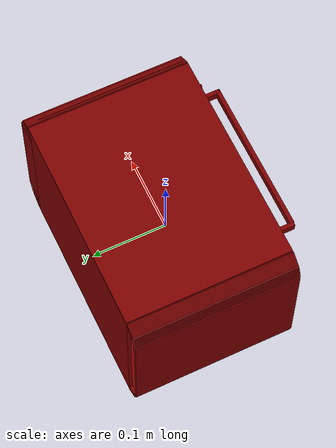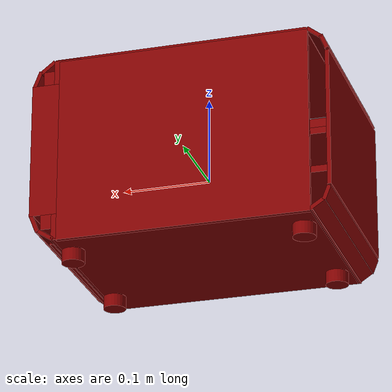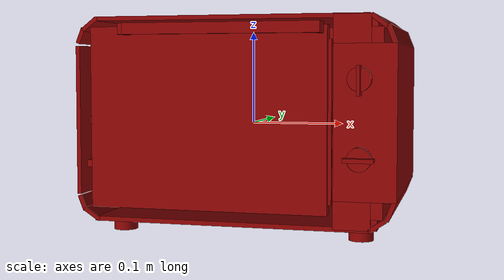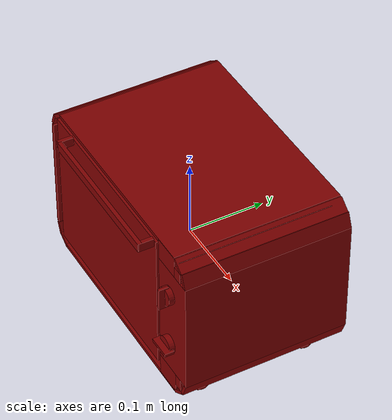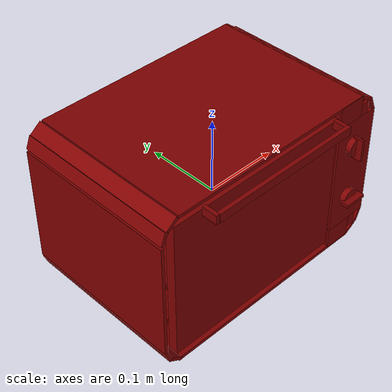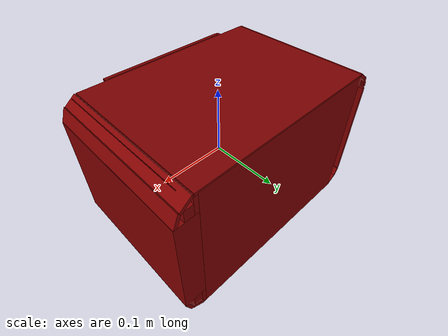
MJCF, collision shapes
<?xml version='1.0' encoding='UTF-8'?>
<mujoco model="model">
  <option timestep="0.002" gravity="0.0 0.0 -9.81"/>
  <compiler angle="radian"/>
  <asset>
    <mesh file="visuals/Body001.obj" name="Body001_vis"/>
    <mesh file="visuals/Door001.obj" name="Door001_vis"/>
    <mesh file="visuals/Door001_Clear.obj" name="Door001_Clear_vis"/>
    <mesh file="visuals/Knob001.obj" name="Knob001_vis"/>
    <mesh file="visuals/Knob002.obj" name="Knob002_vis"/>
    <mesh file="visuals/Shelf001.obj" name="Shelf001_vis"/>
    <mesh file="visuals/Shelf002.obj" name="Shelf002_vis"/>
    <texture file="visuals/T_BC001.png" name="Body001_material" type="2d"/>
    <material name="Body001_material" rgba="1 1 1 1.0" texture="Body001_material" shininess="0.5" specular="1"/>
    <texture file="visuals/T_BC001.png" name="Door001_material" type="2d"/>
    <material name="Door001_material" rgba="1 1 1 1.0" texture="Door001_material" shininess="0.4472135901451111" specular="1"/>
    <texture file="visuals/T_BC001.png" name="Door001_Clear_material" type="2d"/>
    <material name="Door001_Clear_material" rgba="1 1 1 0.7325905561447144" texture="Door001_Clear_material" shininess="0.4472135901451111" specular="0.3103448502657381"/>
    <texture file="visuals/T_BC001.png" name="Knob001_material" type="2d"/>
    <material name="Knob001_material" rgba="1 1 1 1.0" texture="Knob001_material" shininess="0.4472135901451111" specular="0.3103448502657381"/>
    <texture file="visuals/T_BC001.png" name="Knob002_material" type="2d"/>
    <material name="Knob002_material" rgba="1 1 1 1.0" texture="Knob002_material" shininess="0.4472135901451111" specular="0.3103448502657381"/>
    <texture file="visuals/T_BC001.png" name="Shelf001_material" type="2d"/>
    <material name="Shelf001_material" rgba="1 1 1 1.0" texture="Shelf001_material" shininess="0.4472135901451111" specular="0.3103448502657381"/>
    <texture file="visuals/T_BC001.png" name="Shelf002_material" type="2d"/>
    <material name="Shelf002_material" rgba="1 1 1 1.0" texture="Shelf002_material" shininess="0.4472135901451111" specular="0.3103448502657381"/>
  </asset>
  <default>
    <default class="visual">
      <geom conaffinity="0" contype="0" group="1" type="mesh"/>
    </default>
    <default class="collision">
      <geom group="0" rgba="0.5 0 0 0.5"/>
    </default>
    <default class="spawn">
      <geom group="0" rgba="1 1 1 0.5" contype="0" conaffinity="0"/>
      <site group="0" rgba="1 1 1 0.5"/>
    </default>
    <default class="region">
      <geom group="1" conaffinity="0" contype="0" rgba="0 1 0 0"/>
    </default>
  </default>
  <worldbody>
    <body>
      <body name="object">
        <geom mesh="Body001_vis" type="mesh" solimp="0.998 0.998 0.001" solref="0.001 1" friction="0.95 0.3 0.1" class="visual" material="Body001_material"/>
        <geom class="collision" type="cylinder" pos="-0.129260 -0.059913 -0.106618" size="0.012784481048583984 0.008236567489802837" quat="1.0 0.0 0.0 0.0" density="1000.0"/>
        <geom class="collision" type="cylinder" pos="0.129404 -0.060236 -0.106618" size="0.012784481048583984 0.008236567489802837" quat="1.0 0.0 0.0 0.0" density="1000.0"/>
        <geom class="collision" type="cylinder" pos="-0.129220 0.082953 -0.106618" size="0.012784481048583984 0.008236567489802837" quat="1.0 0.0 0.0 0.0" density="1000.0"/>
        <geom class="collision" type="cylinder" pos="0.129404 0.082385 -0.106618" size="0.012784481048583984 0.008236567489802837" quat="1.0 0.0 0.0 0.0" density="1000.0"/>
        <geom class="collision" type="box" pos="-0.003658 0.010522 -0.098064" size="0.14415860176086426 0.10873482376337051 0.0024298548232764006" quat="1.0 0.0 0.0 0.0" density="1000.0"/>
        <geom class="collision" type="box" pos="-0.001113 0.010522 0.112206" size="0.1429423689842224 0.10873539745807648 0.002185462974011898" quat="1.0 0.0 0.0 0.0" density="1000.0"/>
        <geom class="collision" type="box" pos="-0.166121 0.010519 0.005669" size="0.0021834021899849176 0.10873875021934509 0.07840549200773239" quat="1.0 0.0 0.0 0.0" density="1000.0"/>
        <geom class="collision" type="box" pos="0.136982 0.010519 0.007505" size="0.03132210671901703 0.10873860865831375 0.07768809050321579" quat="1.0 0.0 0.0 0.0" density="1000.0"/>
        <geom class="collision" type="box" pos="-0.003874 0.116850 0.005728" size="0.14104901254177094 0.0024080148432403803 0.10631757974624634" quat="1.0 0.0 0.0 0.0" density="1000.0"/>
        <geom class="collision" type="box" pos="0.127455 0.003625 0.006152" size="0.02189512550830841 0.09946140646934509 0.10486149787902832" quat="1.0 0.0 0.0 0.0" density="1000.0"/>
        <geom class="collision" type="box" pos="-0.162922 0.010519 0.094821" size="0.0021834021899849176 0.10873820632696152 0.008513877168297768" quat="0.9822958111763 0.0 0.18733632564544678 0.0" density="1000.0"/>
        <geom class="collision" type="box" pos="-0.152588 0.010519 0.106782" size="0.0021834024228155613 0.10873820632696152 0.009985403157770634" quat="0.8979359865188599 1.6935906010928647e-09 0.44012612104415894 -8.880324031679265e-09" density="1000.0"/>
        <geom class="collision" type="box" pos="0.150607 0.010519 0.106782" size="0.0021834021899849176 0.10873820632696152 0.009985403157770634" quat="0.8979359269142151 1.6935878255353032e-09 -0.4401261508464813 8.880320478965587e-09" density="1000.0"/>
        <geom class="collision" type="box" pos="0.162247 0.010519 0.093453" size="0.0021834021899849176 0.10873820632696152 0.009985402226448059" quat="0.9822958111763 0.0 -0.18733631074428558 0.0" density="1000.0"/>
        <geom class="collision" type="box" pos="0.124340 0.010519 0.098691" size="0.018680520355701447 0.1087382584810257 0.01488926075398922" quat="1.0 0.0 0.0 0.0" density="1000.0"/>
        <geom class="collision" type="box" pos="0.149015 0.010519 0.092498" size="0.006062167696654797 0.10873822122812271 0.00869657751172781" quat="1.0 0.0 0.0 0.0" density="1000.0"/>
        <geom class="collision" type="box" pos="-0.152076 0.010519 -0.093719" size="0.0021834021899849176 0.10873820632696152 0.009985403157770634" quat="0.8803845047950745 -7.734415330418187e-10 -0.4742605984210968 -7.759309639254752e-09" density="1000.0"/>
        <geom class="collision" type="box" pos="-0.162865 0.010519 -0.082151" size="0.0021834021899849176 0.10873820632696152 0.008360877633094788" quat="0.9822958111763 0.0 -0.18733631074428558 0.0" density="1000.0"/>
        <geom class="collision" type="box" pos="0.162407 0.010519 -0.078821" size="0.0021834021899849176 0.10873820632696152 0.009985402226448059" quat="0.9822958111763 0.0 0.1873362958431244 0.0" density="1000.0"/>
        <geom class="collision" type="box" pos="0.149059 0.010519 -0.093719" size="0.0021834021899849176 0.10873820632696152 0.009985403157770634" quat="0.8803845047950745 -7.734387019731059e-10 0.4742605984210968 7.759306974719493e-09" density="1000.0"/>
        <geom class="collision" type="box" pos="0.124340 0.010519 -0.083630" size="0.018680520355701447 0.10873817652463913 0.01488926075398922" quat="1.0 0.0 0.0 0.0" density="1000.0"/>
        <geom class="collision" type="box" pos="0.149015 0.010519 -0.078476" size="0.006062167696654797 0.10873813927173615 0.00869657751172781" quat="1.0 0.0 0.0 0.0" density="1000.0"/>
        <body name="Door001">
          <joint axis="1.0 0.0 0.0" pos="-0.030514 -0.098546 -0.097669" limited="true" name="Door001_joint" range="0.0 1.5707963267948966" type="hinge" damping="1" frictionloss="1" armature=".01" stiffness="0.05"/>
          <geom mesh="Door001_vis" type="mesh" solimp="0.998 0.998 0.001" solref="0.001 1" friction="0.95 0.3 0.1" class="visual" material="Door001_material"/>
          <geom class="collision" type="box" pos="-0.025669 -0.092460 0.009090" size="0.1255735456943512 0.0060557955875992775 0.09455163776874542" quat="1.0 0.0 0.0 0.0" density="1000.0"/>
          <geom class="collision" type="box" pos="-0.005747 -0.116576 0.100692" size="0.10168378055095673 0.0026751032564789057 0.005733071360737085" quat="1.0 0.0 0.0 0.0" density="1000.0"/>
          <geom class="collision" type="box" pos="-0.109397 -0.108440 0.100692" size="0.0026750427205115557 0.009932979010045528 0.005732994060963392" quat="1.0 0.0 0.0 0.0" density="1000.0"/>
          <geom class="collision" type="box" pos="0.093348 -0.108440 0.100692" size="0.0026750483084470034 0.009932991117238998 0.005732994060963392" quat="1.0 0.0 0.0 0.0" density="1000.0"/>
          <body name="Door001_Clear">
            <geom mesh="Door001_Clear_vis" type="mesh" solimp="0.998 0.998 0.001" solref="0.001 1" friction="0.95 0.3 0.1" class="visual" material="Door001_Clear_material"/>
            <geom class="collision" type="box" pos="-0.018414 -0.091163 0.007006" size="0.12179452180862427 0.0019127419218420982 0.0825042873620987" quat="1.0 0.0 0.0 0.0" density="1000.0"/>
          </body>
        </body>
        <body name="Knob001">
          <joint axis="0.0 1.0 0.0" pos="0.132101 -0.105523 0.049595" limited="true" name="Knob001_joint" range="0.0 4.014257279586958" type="hinge" damping="0.05" armature="0.001"/>
          <geom mesh="Knob001_vis" type="mesh" solimp="0.998 0.998 0.001" solref="0.001 1" friction="0.95 0.3 0.1" class="visual" material="Knob001_material"/>
          <geom class="collision" type="cylinder" pos="0.132101 -0.102111 0.050099" size="0.011982725001871586 0.0036792955361306667" quat="0.7071068286895752 0.7071067690849304 1.5700924318127872e-16 5.9269340452702814e-24" density="1000.0"/>
          <geom class="collision" type="box" pos="0.132112 -0.107072 0.048953" size="0.001737714628688991 0.006641484331339598 0.014822889119386673" quat="1.0 0.0 0.0 0.0" density="1000.0"/>
        </body>
        <body name="Knob002">
          <joint axis="0.0 1.0 0.0" pos="0.131497 -0.105523 -0.028554" limited="true" name="Knob002_joint" range="0.0 3.141592653589793" type="hinge" damping="0.05" armature="0.001"/>
          <geom mesh="Knob002_vis" type="mesh" solimp="0.998 0.998 0.001" solref="0.001 1" friction="0.95 0.3 0.1" class="visual" material="Knob002_material"/>
          <geom class="collision" type="cylinder" pos="0.132101 -0.102111 -0.027958" size="0.011982725001871586 0.0036792955361306667" quat="0.7071068286895752 0.7071067690849304 1.5700924318127872e-16 5.9269340452702814e-24" density="1000.0"/>
          <geom class="collision" type="box" pos="0.132075 -0.107989 -0.028310" size="0.0151163749396801 0.006026469636708498 0.002072633244097233" quat="1.0 0.0 0.0 0.0" density="1000.0"/>
        </body>
        <body name="Shelf001">
          <joint axis="0.0 -1.0 0.0" pos="-0.028681 -0.000150 0.004680" limited="true" name="Shelf001_joint" range="0.0 0.15" type="slide" damping="1" frictionloss="1" armature=".01" stiffness="0.05"/>
          <geom mesh="Shelf001_vis" type="mesh" solimp="0.998 0.998 0.001" solref="0.001 1" friction="0.95 0.3 0.1" class="visual" material="Shelf001_material"/>
          <geom class="collision" type="box" pos="-0.028504 0.003812 0.004680" size="0.13229717314243317 0.08529195934534073 0.003746497444808483" quat="1.0 0.0 0.0 0.0" density="1000.0"/>
        </body>
        <body name="Shelf002">
          <joint axis="0.0 -1.0 0.0" pos="-0.029041 0.000185 -0.042632" limited="true" name="Shelf002_joint" range="0.0 0.15" type="slide" damping="1" frictionloss="1" armature=".01" stiffness="0.05"/>
          <geom mesh="Shelf002_vis" type="mesh" solimp="0.998 0.998 0.001" solref="0.001 1" friction="0.95 0.3 0.1" class="visual" material="Shelf002_material"/>
          <geom class="collision" type="box" pos="-0.028901 0.002468 -0.041242" size="0.1329568326473236 0.08898720890283585 0.003746530506759882" quat="1.0 0.0 0.0 0.0" density="1000.0"/>
        </body>
        <geom class="region" name="reg_int" type="box" pos="-0.030215499999999992 0.0038105000000000014 0.006629000000000003" size="0.1360695 0.10023950000000001 0.104706"/>
        <geom class="region" name="reg_main" type="box" pos="0.0 0.010287999999999999 0.0" size="0.168304 0.10897000000000001 0.114391"/>
      </body>
    </body>
  </worldbody>
  <actuator>
    <motor name="Door001_joint_actuator" joint="Door001_joint" gear="50"/>
    <motor name="Knob001_joint_actuator" joint="Knob001_joint" gear="50"/>
    <motor name="Knob002_joint_actuator" joint="Knob002_joint" gear="50"/>
    <motor name="Shelf001_joint_actuator" joint="Shelf001_joint" gear="50"/>
    <motor name="Shelf002_joint_actuator" joint="Shelf002_joint" gear="50"/>
  </actuator>
</mujoco>
